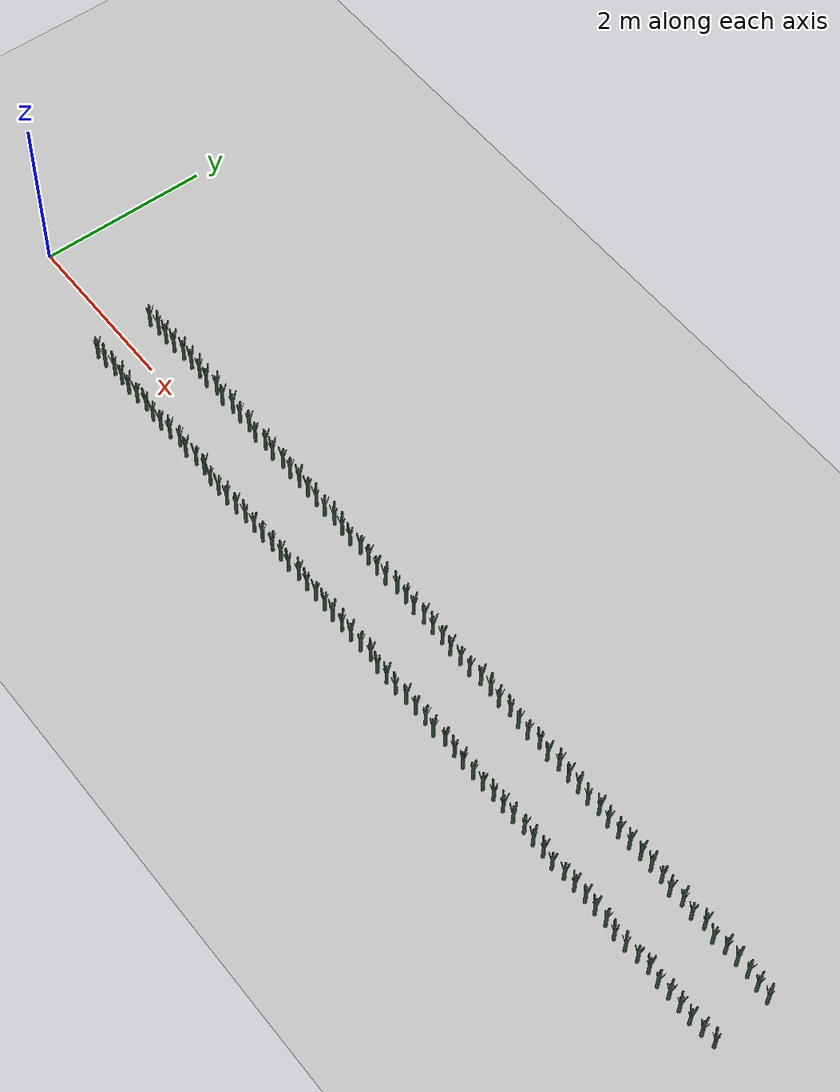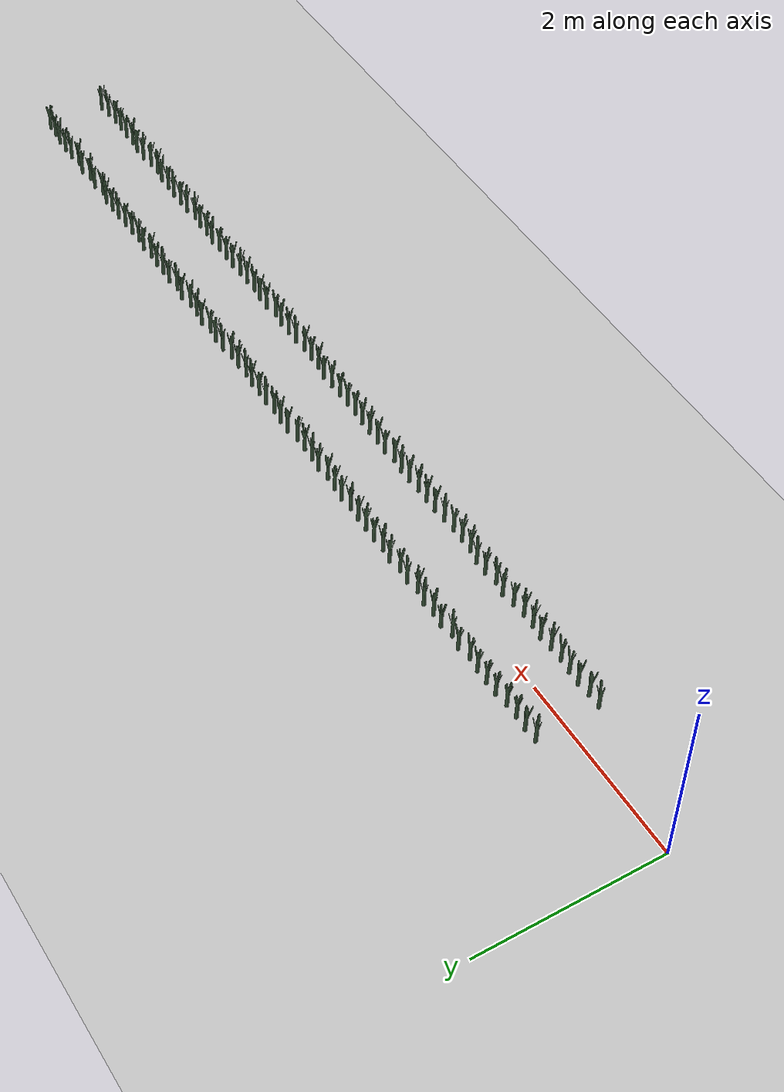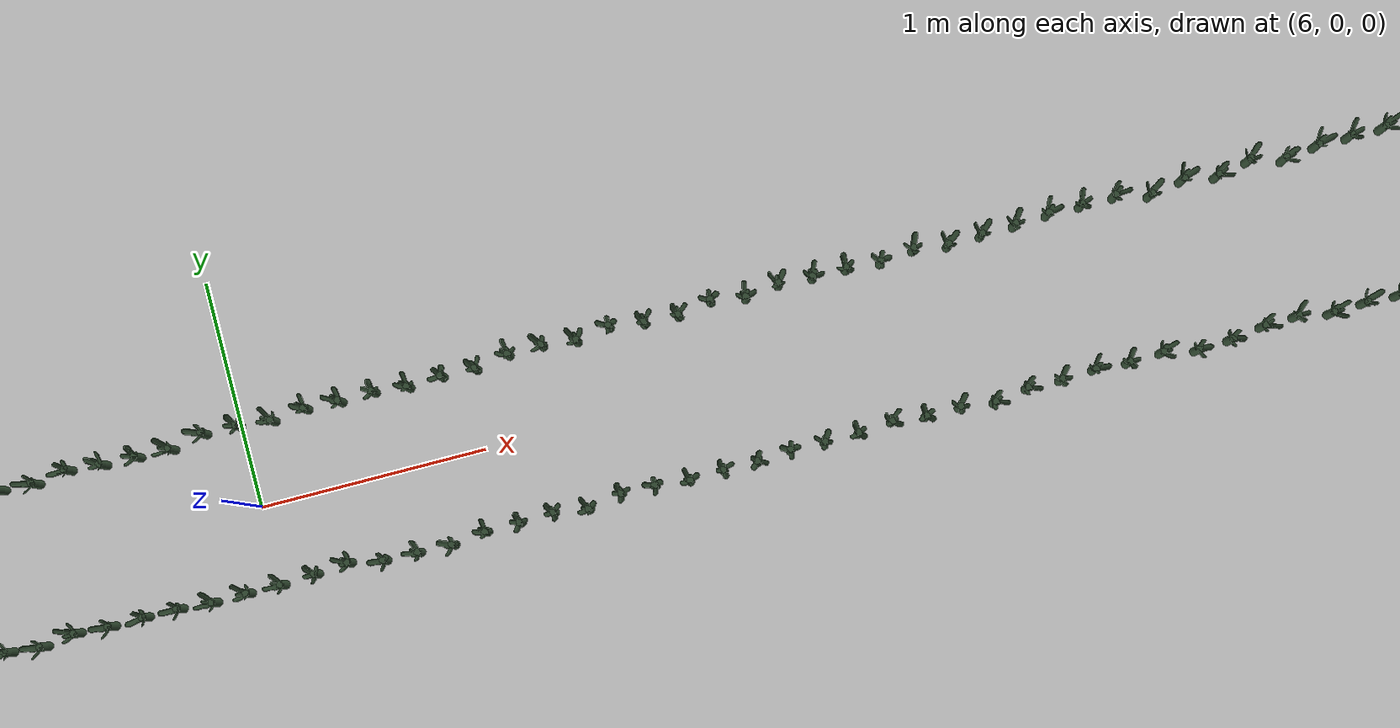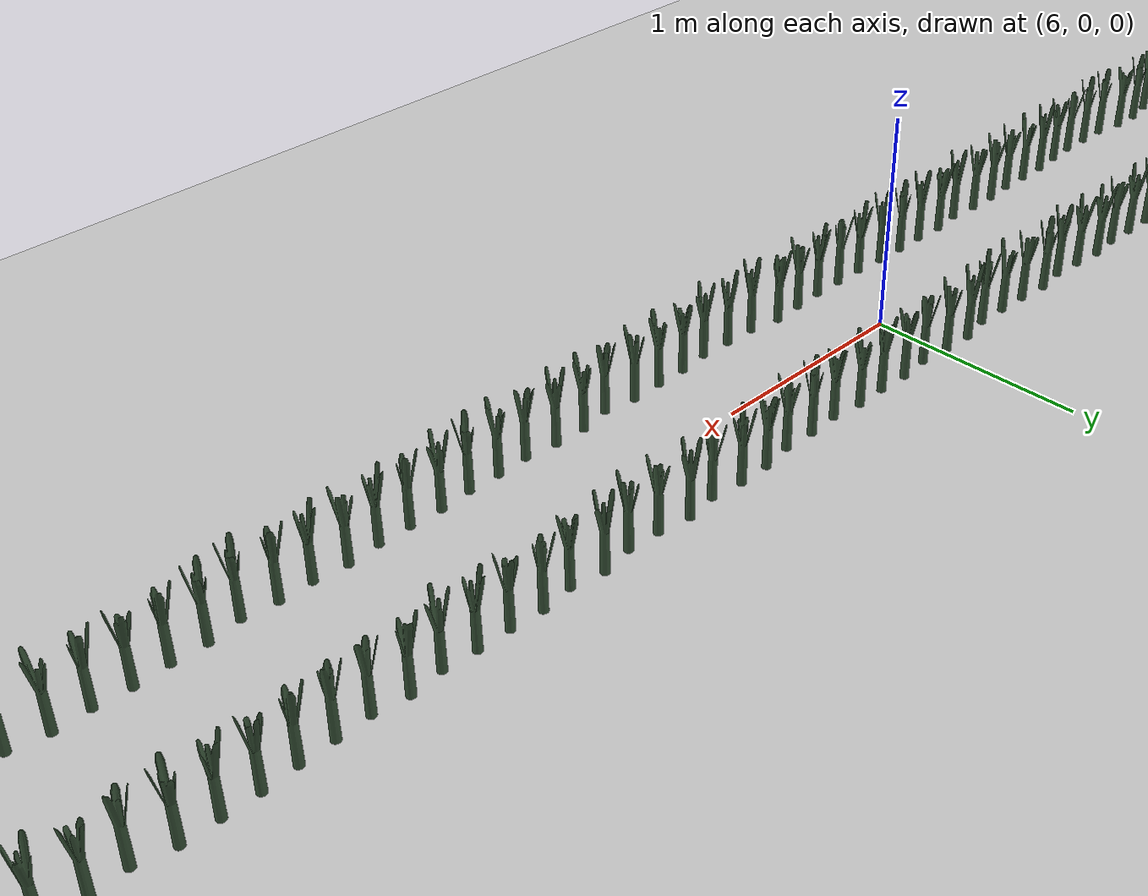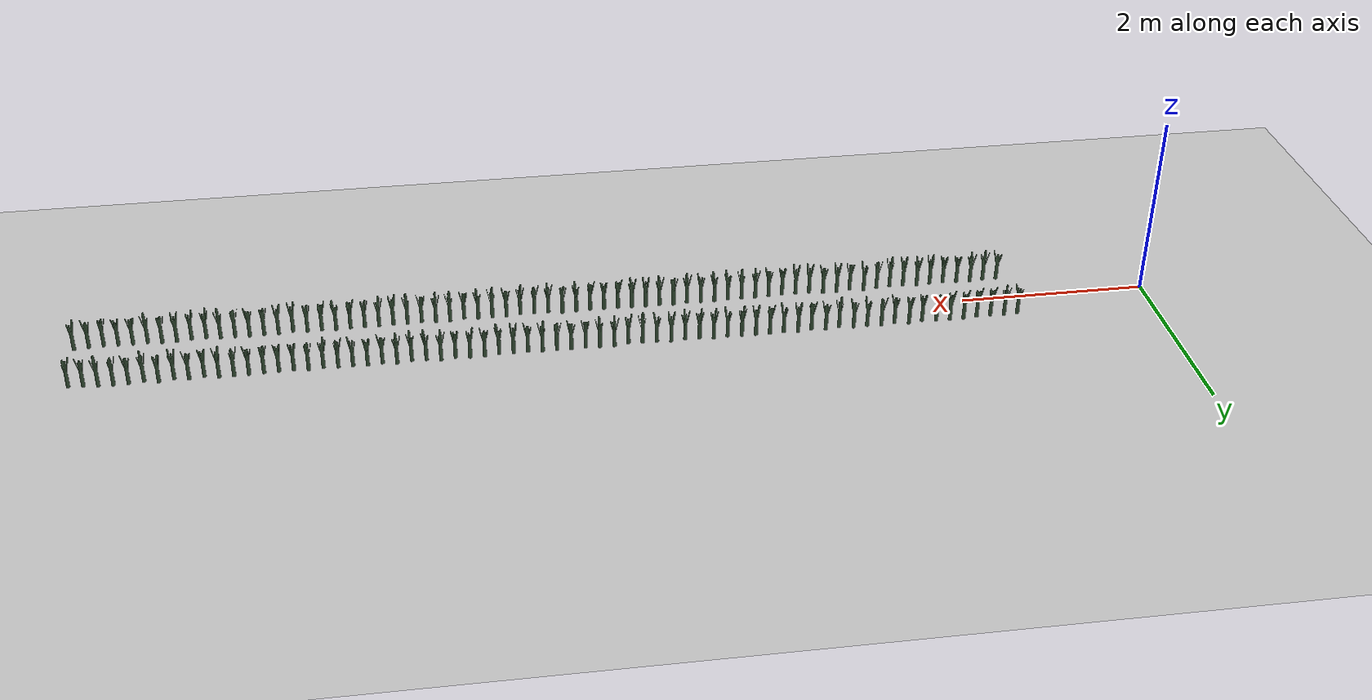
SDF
<sdf version="1.6">
 <world name="default">
  <light name="sun" type="directional">
   <pose>0 0 10 0 -0 0</pose>
   <diffuse>0.5 0.5 0.5 1</diffuse>
   <specular>0.1 0.1 0.1 1</specular>
   <attenuation>
    <range>1000</range>
    <constant>0.9</constant>
    <linear>0.01</linear>
    <quadratic>0.001</quadratic>
   </attenuation>
   <direction>0.9 0.5 -1</direction>
  </light>
  <scene><background>130 200 255 1</background><ambient>130 140 140 1</ambient></scene>
  <include><uri>model://dirt_plane</uri></include>
  <include>
   <uri>model://Leek</uri>
   <pose>1.500000 0.331066 0.15 0 0 -170.410200</pose>
   <static>0</static>
  </include>
  <include><uri>model://Leek</uri><pose>1.650000 0.342615 0.15 0 0 -66.461860</pose><static>0</static></include>
  <include>
   <uri>model://Leek</uri>
   <pose>1.800000 0.334820 0.15 0 0 -136.617335</pose>
   <static>0</static>
  </include>
  <include>
   <uri>model://Leek</uri>
   <pose>1.950000 0.336222 0.15 0 0 -124.000258</pose>
   <static>0</static>
  </include>
  <include><uri>model://Leek</uri><pose>2.100000 0.357179 0.15 0 0 64.607136</pose><static>0</static></include>
  <include><uri>model://Leek</uri><pose>2.250000 0.355083 0.15 0 0 45.750543</pose><static>0</static></include>
  <include><uri>model://Leek</uri><pose>2.400000 0.354946 0.15 0 0 44.515054</pose><static>0</static></include>
  <include>
   <uri>model://Leek</uri>
   <pose>2.550000 0.338156 0.15 0 0 -106.598322</pose>
   <static>0</static>
  </include>
  <include><uri>model://Leek</uri><pose>2.700000 0.368202 0.15 0 0 163.821385</pose><static>0</static></include>
  <include>
   <uri>model://Leek</uri>
   <pose>2.850000 0.334588 0.15 0 0 -138.705356</pose>
   <static>0</static>
  </include>
  <include><uri>model://Leek</uri><pose>3.000000 0.364114 0.15 0 0 127.028839</pose><static>0</static></include>
  <include><uri>model://Leek</uri><pose>3.150000 0.349184 0.15 0 0 -7.345285</pose><static>0</static></include>
  <include><uri>model://Leek</uri><pose>3.300000 0.360394 0.15 0 0 93.548387</pose><static>0</static></include>
  <include>
   <uri>model://Leek</uri>
   <pose>3.450000 0.331619 0.15 0 0 -165.431425</pose>
   <static>0</static>
  </include>
  <include><uri>model://Leek</uri><pose>3.600000 0.356942 0.15 0 0 62.480186</pose><static>0</static></include>
  <include><uri>model://Leek</uri><pose>3.750000 0.339002 0.15 0 0 -98.985541</pose><static>0</static></include>
  <include><uri>model://Leek</uri><pose>3.900000 0.365083 0.15 0 0 135.744787</pose><static>0</static></include>
  <include><uri>model://Leek</uri><pose>4.050000 0.345013 0.15 0 0 -44.879156</pose><static>0</static></include>
  <include><uri>model://Leek</uri><pose>4.200000 0.354374 0.15 0 0 39.363607</pose><static>0</static></include>
  <include><uri>model://Leek</uri><pose>4.350000 0.353921 0.15 0 0 35.288065</pose><static>0</static></include>
  <include><uri>model://Leek</uri><pose>4.500000 0.350970 0.15 0 0 8.734489</pose><static>0</static></include>
  <include><uri>model://Leek</uri><pose>4.650000 0.345014 0.15 0 0 -44.874635</pose><static>0</static></include>
  <include><uri>model://Leek</uri><pose>4.800000 0.360051 0.15 0 0 90.456906</pose><static>0</static></include>
  <include><uri>model://Leek</uri><pose>4.950000 0.345387 0.15 0 0 -41.518746</pose><static>0</static></include>
  <include>
   <uri>model://Leek</uri>
   <pose>5.100000 0.334290 0.15 0 0 -141.389777</pose>
   <static>0</static>
  </include>
  <include><uri>model://Leek</uri><pose>5.250000 0.355997 0.15 0 0 53.970559</pose><static>0</static></include>
  <include><uri>model://Leek</uri><pose>5.400000 0.340837 0.15 0 0 -82.462621</pose><static>0</static></include>
  <include>
   <uri>model://Leek</uri>
   <pose>5.550000 0.335844 0.15 0 0 -127.403340</pose>
   <static>0</static>
  </include>
  <include>
   <uri>model://Leek</uri>
   <pose>5.700000 0.330689 0.15 0 0 -173.802646</pose>
   <static>0</static>
  </include>
  <include><uri>model://Leek</uri><pose>5.850000 0.361495 0.15 0 0 103.456425</pose><static>0</static></include>
  <include><uri>model://Leek</uri><pose>6.000000 0.356821 0.15 0 0 61.391514</pose><static>0</static></include>
  <include><uri>model://Leek</uri><pose>6.150000 0.340943 0.15 0 0 -81.515636</pose><static>0</static></include>
  <include><uri>model://Leek</uri><pose>6.300000 0.354840 0.15 0 0 43.557563</pose><static>0</static></include>
  <include><uri>model://Leek</uri><pose>6.450000 0.348734 0.15 0 0 -11.393442</pose><static>0</static></include>
  <include><uri>model://Leek</uri><pose>6.600000 0.352580 0.15 0 0 23.222600</pose><static>0</static></include>
  <include>
   <uri>model://Leek</uri>
   <pose>6.750000 0.334612 0.15 0 0 -138.492702</pose>
   <static>0</static>
  </include>
  <include><uri>model://Leek</uri><pose>6.900000 0.343435 0.15 0 0 -59.088440</pose><static>0</static></include>
  <include>
   <uri>model://Leek</uri>
   <pose>7.050000 0.336624 0.15 0 0 -120.383028</pose>
   <static>0</static>
  </include>
  <include><uri>model://Leek</uri><pose>7.200000 0.361160 0.15 0 0 100.441254</pose><static>0</static></include>
  <include><uri>model://Leek</uri><pose>7.350000 0.363523 0.15 0 0 121.709375</pose><static>0</static></include>
  <include><uri>model://Leek</uri><pose>7.500000 0.344474 0.15 0 0 -49.733433</pose><static>0</static></include>
  <include><uri>model://Leek</uri><pose>7.650000 0.369182 0.15 0 0 172.642097</pose><static>0</static></include>
  <include><uri>model://Leek</uri><pose>7.800000 0.347087 0.15 0 0 -26.220464</pose><static>0</static></include>
  <include><uri>model://Leek</uri><pose>7.950000 0.340088 0.15 0 0 -89.204913</pose><static>0</static></include>
  <include><uri>model://Leek</uri><pose>8.100000 0.367802 0.15 0 0 160.221304</pose><static>0</static></include>
  <include><uri>model://Leek</uri><pose>8.250000 0.341602 0.15 0 0 -75.578317</pose><static>0</static></include>
  <include><uri>model://Leek</uri><pose>8.400000 0.362648 0.15 0 0 113.831211</pose><static>0</static></include>
  <include><uri>model://Leek</uri><pose>8.550000 0.354140 0.15 0 0 37.258923</pose><static>0</static></include>
  <include><uri>model://Leek</uri><pose>8.700000 0.353690 0.15 0 0 33.207692</pose><static>0</static></include>
  <include><uri>model://Leek</uri><pose>8.850000 0.343329 0.15 0 0 -60.038932</pose><static>0</static></include>
  <include><uri>model://Leek</uri><pose>9.000000 0.361319 0.15 0 0 101.872860</pose><static>0</static></include>
  <include><uri>model://Leek</uri><pose>9.150000 0.340293 0.15 0 0 -87.362684</pose><static>0</static></include>
  <include><uri>model://Leek</uri><pose>9.300000 0.347293 0.15 0 0 -24.365426</pose><static>0</static></include>
  <include><uri>model://Leek</uri><pose>9.450000 0.352922 0.15 0 0 26.294130</pose><static>0</static></include>
  <include><uri>model://Leek</uri><pose>9.600000 0.363246 0.15 0 0 119.210451</pose><static>0</static></include>
  <include><uri>model://Leek</uri><pose>9.750000 0.363448 0.15 0 0 121.035883</pose><static>0</static></include>
  <include><uri>model://Leek</uri><pose>9.900000 0.365149 0.15 0 0 136.338085</pose><static>0</static></include>
  <include>
   <uri>model://Leek</uri>
   <pose>10.050000 0.330534 0.15 0 0 -175.196964</pose>
   <static>0</static>
  </include>
  <include><uri>model://Leek</uri><pose>10.200000 0.359794 0.15 0 0 88.145845</pose><static>0</static></include>
  <include>
   <uri>model://Leek</uri>
   <pose>10.350000 0.337861 0.15 0 0 -109.250023</pose>
   <static>0</static>
  </include>
  <include>
   <uri>model://Leek</uri>
   <pose>10.500000 0.368964 0.15 0 0 170.679836</pose>
   <static>0</static>
  </include>
  <include>
   <uri>model://Leek</uri>
   <pose>10.650000 0.335712 0.15 0 0 -128.593337</pose>
   <static>0</static>
  </include>
  <include><uri>model://Leek</uri><pose>10.800000 0.356984 0.15 0 0 62.854796</pose><static>0</static></include>
  <include><uri>model://Leek</uri><pose>10.950000 0.359952 0.15 0 0 89.567915</pose><static>0</static></include>
  <include><uri>model://Leek</uri><pose>11.100000 0.360332 0.15 0 0 92.987246</pose><static>0</static></include>
  <include>
   <uri>model://Leek</uri>
   <pose>11.250000 0.340247 0.15 0 0 -87.774133</pose>
   <static>0</static>
  </include>
  <include>
   <uri>model://Leek</uri>
   <pose>11.400000 0.333470 0.15 0 0 -148.769230</pose>
   <static>0</static>
  </include>
  <include>
   <uri>model://Leek</uri>
   <pose>1.521791 -0.363311 0.15 0 0 -119.796762</pose>
   <static>0</static>
  </include>
  <include>
   <uri>model://Leek</uri>
   <pose>1.671791 -0.365764 0.15 0 0 -141.877969</pose>
   <static>0</static>
  </include>
  <include><uri>model://Leek</uri><pose>1.821791 -0.346889 0.15 0 0 28.000204</pose><static>0</static></include>
  <include>
   <uri>model://Leek</uri>
   <pose>1.971791 -0.356952 0.15 0 0 -62.571106</pose>
   <static>0</static>
  </include>
  <include>
   <uri>model://Leek</uri>
   <pose>2.121791 -0.369525 0.15 0 0 -175.724323</pose>
   <static>0</static>
  </include>
  <include>
   <uri>model://Leek</uri>
   <pose>2.271791 -0.362827 0.15 0 0 -115.444248</pose>
   <static>0</static>
  </include>
  <include><uri>model://Leek</uri><pose>2.421791 -0.348940 0.15 0 0 9.543225</pose><static>0</static></include>
  <include>
   <uri>model://Leek</uri>
   <pose>2.571791 -0.367736 0.15 0 0 -159.626015</pose>
   <static>0</static>
  </include>
  <include>
   <uri>model://Leek</uri>
   <pose>2.721791 -0.369782 0.15 0 0 -178.041936</pose>
   <static>0</static>
  </include>
  <include>
   <uri>model://Leek</uri>
   <pose>2.871791 -0.355464 0.15 0 0 -49.177901</pose>
   <static>0</static>
  </include>
  <include>
   <uri>model://Leek</uri>
   <pose>3.021791 -0.331953 0.15 0 0 162.418709</pose>
   <static>0</static>
  </include>
  <include>
   <uri>model://Leek</uri>
   <pose>3.171791 -0.361182 0.15 0 0 -100.638605</pose>
   <static>0</static>
  </include>
  <include>
   <uri>model://Leek</uri>
   <pose>3.321791 -0.335638 0.15 0 0 129.255775</pose>
   <static>0</static>
  </include>
  <include>
   <uri>model://Leek</uri>
   <pose>3.471791 -0.336786 0.15 0 0 118.921998</pose>
   <static>0</static>
  </include>
  <include>
   <uri>model://Leek</uri>
   <pose>3.621791 -0.365665 0.15 0 0 -140.983492</pose>
   <static>0</static>
  </include>
  <include>
   <uri>model://Leek</uri>
   <pose>3.771791 -0.367755 0.15 0 0 -159.793444</pose>
   <static>0</static>
  </include>
  <include>
   <uri>model://Leek</uri>
   <pose>3.921791 -0.369501 0.15 0 0 -175.506170</pose>
   <static>0</static>
  </include>
  <include>
   <uri>model://Leek</uri>
   <pose>4.071791 -0.359140 0.15 0 0 -82.256217</pose>
   <static>0</static>
  </include>
  <include><uri>model://Leek</uri><pose>4.221791 -0.345481 0.15 0 0 40.670595</pose><static>0</static></include>
  <include><uri>model://Leek</uri><pose>4.371791 -0.347400 0.15 0 0 23.397534</pose><static>0</static></include>
  <include><uri>model://Leek</uri><pose>4.521791 -0.349421 0.15 0 0 5.208659</pose><static>0</static></include>
  <include>
   <uri>model://Leek</uri>
   <pose>4.671791 -0.336180 0.15 0 0 124.382830</pose>
   <static>0</static>
  </include>
  <include>
   <uri>model://Leek</uri>
   <pose>4.821791 -0.337509 0.15 0 0 112.421774</pose>
   <static>0</static>
  </include>
  <include><uri>model://Leek</uri><pose>4.971791 -0.351059 0.15 0 0 -9.533291</pose><static>0</static></include>
  <include>
   <uri>model://Leek</uri>
   <pose>5.121791 -0.331043 0.15 0 0 170.612679</pose>
   <static>0</static>
  </include>
  <include><uri>model://Leek</uri><pose>5.271791 -0.339877 0.15 0 0 91.109554</pose><static>0</static></include>
  <include>
   <uri>model://Leek</uri>
   <pose>5.421791 -0.338420 0.15 0 0 104.219486</pose>
   <static>0</static>
  </include>
  <include><uri>model://Leek</uri><pose>5.571791 -0.340553 0.15 0 0 85.027126</pose><static>0</static></include>
  <include>
   <uri>model://Leek</uri>
   <pose>5.721791 -0.351895 0.15 0 0 -17.059107</pose>
   <static>0</static>
  </include>
  <include><uri>model://Leek</uri><pose>5.871791 -0.350640 0.15 0 0 -5.758200</pose><static>0</static></include>
  <include>
   <uri>model://Leek</uri>
   <pose>6.021791 -0.351906 0.15 0 0 -17.156833</pose>
   <static>0</static>
  </include>
  <include><uri>model://Leek</uri><pose>6.171791 -0.343156 0.15 0 0 61.596759</pose><static>0</static></include>
  <include>
   <uri>model://Leek</uri>
   <pose>6.321791 -0.332434 0.15 0 0 158.089780</pose>
   <static>0</static>
  </include>
  <include>
   <uri>model://Leek</uri>
   <pose>6.471791 -0.360812 0.15 0 0 -97.306511</pose>
   <static>0</static>
  </include>
  <include>
   <uri>model://Leek</uri>
   <pose>6.621791 -0.364496 0.15 0 0 -130.466886</pose>
   <static>0</static>
  </include>
  <include>
   <uri>model://Leek</uri>
   <pose>6.771791 -0.369935 0.15 0 0 -179.414639</pose>
   <static>0</static>
  </include>
  <include>
   <uri>model://Leek</uri>
   <pose>6.921791 -0.352122 0.15 0 0 -19.097353</pose>
   <static>0</static>
  </include>
  <include><uri>model://Leek</uri><pose>7.071791 -0.350194 0.15 0 0 -1.744192</pose><static>0</static></include>
  <include><uri>model://Leek</uri><pose>7.221791 -0.345251 0.15 0 0 42.736666</pose><static>0</static></include>
  <include>
   <uri>model://Leek</uri>
   <pose>7.371791 -0.368820 0.15 0 0 -169.378461</pose>
   <static>0</static>
  </include>
  <include><uri>model://Leek</uri><pose>7.521791 -0.339006 0.15 0 0 98.947019</pose><static>0</static></include>
  <include><uri>model://Leek</uri><pose>7.671791 -0.342682 0.15 0 0 65.858335</pose><static>0</static></include>
  <include>
   <uri>model://Leek</uri>
   <pose>7.821791 -0.360453 0.15 0 0 -94.075632</pose>
   <static>0</static>
  </include>
  <include>
   <uri>model://Leek</uri>
   <pose>7.971791 -0.352952 0.15 0 0 -26.570567</pose>
   <static>0</static>
  </include>
  <include>
   <uri>model://Leek</uri>
   <pose>8.121791 -0.354437 0.15 0 0 -39.928594</pose>
   <static>0</static>
  </include>
  <include><uri>model://Leek</uri><pose>8.271791 -0.341998 0.15 0 0 72.016025</pose><static>0</static></include>
  <include><uri>model://Leek</uri><pose>8.421791 -0.347792 0.15 0 0 19.870389</pose><static>0</static></include>
  <include><uri>model://Leek</uri><pose>8.571791 -0.346296 0.15 0 0 33.331869</pose><static>0</static></include>
  <include>
   <uri>model://Leek</uri>
   <pose>8.721791 -0.333344 0.15 0 0 149.901469</pose>
   <static>0</static>
  </include>
  <include><uri>model://Leek</uri><pose>8.871791 -0.348388 0.15 0 0 14.510207</pose><static>0</static></include>
  <include><uri>model://Leek</uri><pose>9.021791 -0.346390 0.15 0 0 32.493943</pose><static>0</static></include>
  <include>
   <uri>model://Leek</uri>
   <pose>9.171791 -0.364210 0.15 0 0 -127.887281</pose>
   <static>0</static>
  </include>
  <include><uri>model://Leek</uri><pose>9.321791 -0.340478 0.15 0 0 85.696424</pose><static>0</static></include>
  <include><uri>model://Leek</uri><pose>9.471791 -0.342884 0.15 0 0 64.040402</pose><static>0</static></include>
  <include>
   <uri>model://Leek</uri>
   <pose>9.621791 -0.335375 0.15 0 0 131.620773</pose>
   <static>0</static>
  </include>
  <include><uri>model://Leek</uri><pose>9.771791 -0.344262 0.15 0 0 51.642348</pose><static>0</static></include>
  <include><uri>model://Leek</uri><pose>9.921791 -0.338971 0.15 0 0 99.258604</pose><static>0</static></include>
  <include>
   <uri>model://Leek</uri>
   <pose>10.071791 -0.367147 0.15 0 0 -154.327193</pose>
   <static>0</static>
  </include>
  <include>
   <uri>model://Leek</uri>
   <pose>10.221791 -0.360198 0.15 0 0 -91.778701</pose>
   <static>0</static>
  </include>
  <include>
   <uri>model://Leek</uri>
   <pose>10.371791 -0.339090 0.15 0 0 98.188647</pose>
   <static>0</static>
  </include>
  <include>
   <uri>model://Leek</uri>
   <pose>10.521791 -0.333797 0.15 0 0 145.824265</pose>
   <static>0</static>
  </include>
  <include>
   <uri>model://Leek</uri>
   <pose>10.671791 -0.358513 0.15 0 0 -76.615461</pose>
   <static>0</static>
  </include>
  <include>
   <uri>model://Leek</uri>
   <pose>10.821791 -0.351346 0.15 0 0 -12.111371</pose>
   <static>0</static>
  </include>
  <include>
   <uri>model://Leek</uri>
   <pose>10.971791 -0.356204 0.15 0 0 -55.833544</pose>
   <static>0</static>
  </include>
  <include>
   <uri>model://Leek</uri>
   <pose>11.121791 -0.361725 0.15 0 0 -105.529006</pose>
   <static>0</static>
  </include>
  <include><uri>model://Leek</uri><pose>11.271791 -0.349292 0.15 0 0 6.370425</pose><static>0</static></include>
  <include>
   <uri>model://Leek</uri>
   <pose>11.421791 -0.330859 0.15 0 0 172.270810</pose>
   <static>0</static>
  </include>
 </world>
</sdf>

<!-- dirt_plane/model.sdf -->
<sdf version="1.4">
<model name="dirt_plane">
  <static>true</static>
    <link name="link">
      <collision name="collision">
        <geometry>
          <plane>
            <normal>0 0 1</normal>
            <size>100 100</size>
          </plane>
        </geometry>
        <surface>
          <friction>
            <ode>
              <mu>100</mu>
              <mu2>50</mu2>
            </ode>
          </friction>
        </surface>
      </collision>
      <visual name="visual">
        <cast_shadows>false</cast_shadows>
        <geometry>
          <plane>
            <normal>0 0 1</normal>
            <size>100 100</size>
          </plane>
        </geometry>
        <material>
          <script>
            <uri>model://ground_plane/materials/scripts/my_ground_plane.material</uri>
            <uri>model://ground_plane/materials/textures</uri>
            <name>my_ground_plane/Dirt</name>
          </script>
        </material>
      </visual>
    </link>
  </model>
</sdf>

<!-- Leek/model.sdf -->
<sdf version='1.6'>
  <model name='Leek'>
    <link name='link'>
      <pose frame=''>0 0 0 0 -0 0</pose>
      <inertial>
        <mass>1</mass>
        <inertia>
          <ixx>0.145833</ixx>
          <ixy>0</ixy>
          <ixz>0</ixz>
          <iyy>0.145833</iyy>
          <iyz>0</iyz>
          <izz>0.125</izz>
        </inertia>
        <pose frame=''>0 0 0 0 -0 0</pose>
      </inertial>
      <self_collide>0</self_collide>
      <kinematic>0</kinematic>
      <gravity>1</gravity>
      <visual name='visual'>
        <geometry>
          <mesh>
            <uri>model://Leek/Poireau.dae</uri>
            <scale>1 1 1</scale>
          </mesh>
        </geometry>
        <material>
          <script>
            <name>Gazebo/Grey</name>
            <uri>file://media/materials/scripts/gazebo.material</uri>
          </script>
          <ambient>0.3 0.7 0.4 0</ambient>
          <diffuse>0.2 0.3 0.2 0</diffuse>
          <specular>0 0 0 1</specular>
          <emissive>0 0 0 1</emissive>
          <shader type='vertex'>
            <normal_map>__default__</normal_map>
          </shader>
        </material>
        <pose frame=''>0 0 -0.08 0 -0 0</pose>
        <cast_shadows>1</cast_shadows>
        <transparency>0</transparency>
      </visual>
      <collision name='collision'>
        <laser_retro>0</laser_retro>
        <max_contacts>10</max_contacts>
        <pose frame=''>0 0 0 0 -0 0</pose>
        <geometry>
          <cylinder>
            <radius>0.02</radius>
            <length>0.25</length>
          </cylinder>
        </geometry>
        <surface>
          <friction>
            <ode>
              <mu>1</mu>
              <mu2>1</mu2>
              <fdir1>0 0 0</fdir1>
              <slip1>0</slip1>
              <slip2>0</slip2>
            </ode>
            <torsional>
              <coefficient>1</coefficient>
              <patch_radius>0</patch_radius>
              <surface_radius>0</surface_radius>
              <use_patch_radius>1</use_patch_radius>
              <ode>
                <slip>0</slip>
              </ode>
            </torsional>
          </friction>
          <bounce>
            <restitution_coefficient>0</restitution_coefficient>
            <threshold>1e+06</threshold>
          </bounce>
          <contact>
            <collide_without_contact>0</collide_without_contact>
            <collide_without_contact_bitmask>1</collide_without_contact_bitmask>
            <collide_bitmask>1</collide_bitmask>
            <ode>
              <soft_cfm>0</soft_cfm>
              <soft_erp>0.2</soft_erp>
              <kp>1e+13</kp>
              <kd>1</kd>
              <max_vel>0.01</max_vel>
              <min_depth>0</min_depth>
            </ode>
            <bullet>
              <split_impulse>1</split_impulse>
              <split_impulse_penetration_threshold>-0.01</split_impulse_penetration_threshold>
              <soft_cfm>0</soft_cfm>
              <soft_erp>0.2</soft_erp>
              <kp>1e+13</kp>
              <kd>1</kd>
            </bullet>
          </contact>
        </surface>
      </collision>
    </link>
    <static>0</static>
    <allow_auto_disable>1</allow_auto_disable>
  </model>
</sdf>
